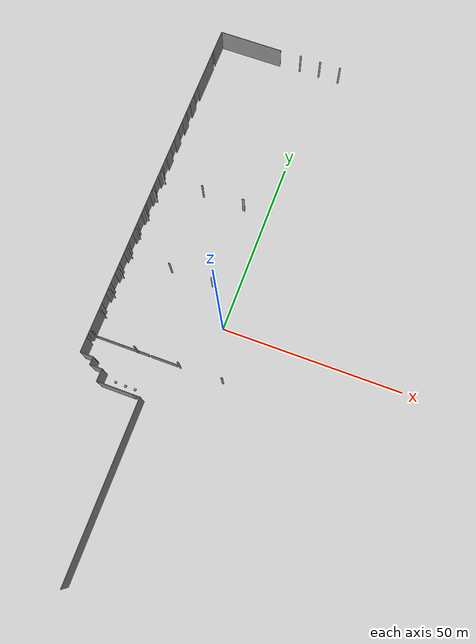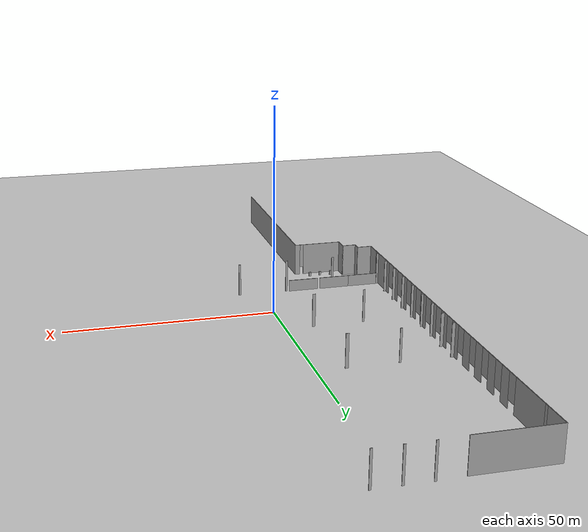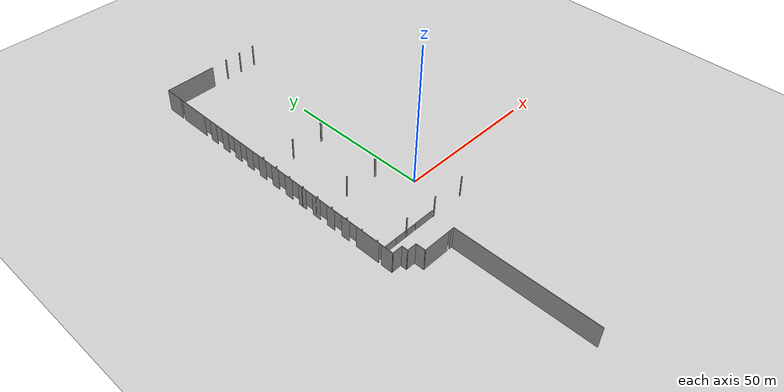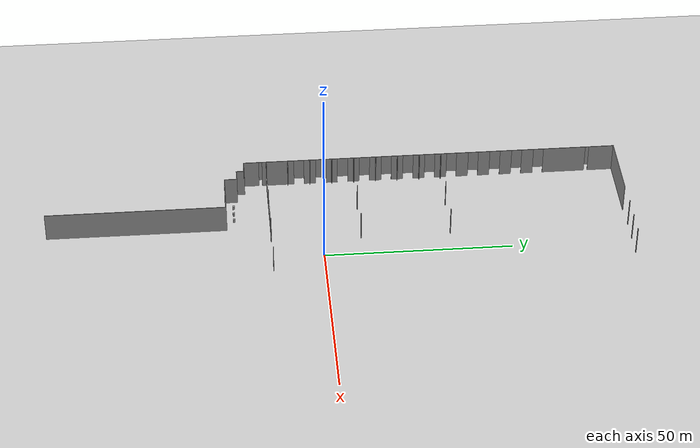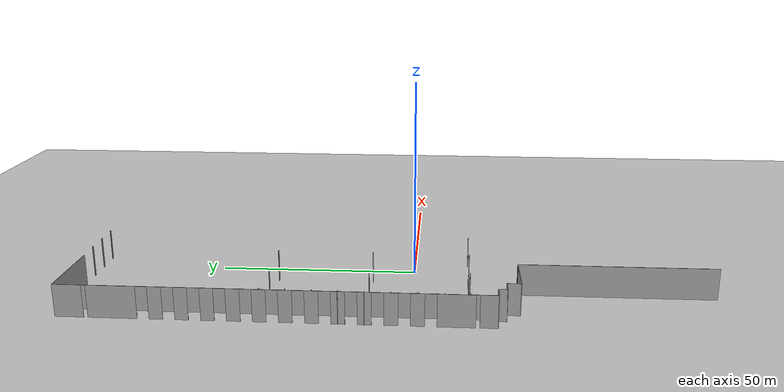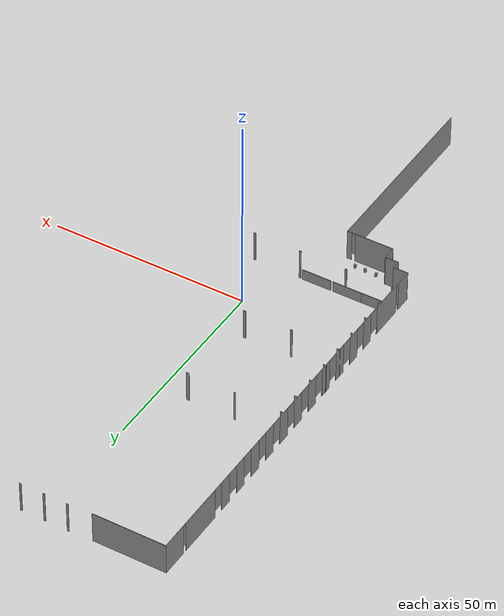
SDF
<sdf version="1.7">
 <world name="default">
  <model name="ground_plane">
   <static>1</static>
   <link name="link">
    <collision name="collision">
     <geometry><plane><normal>0 0 1</normal><size>100 100</size></plane></geometry>
     <surface><friction><ode><mu>100</mu><mu2>50</mu2></ode></friction></surface>
    </collision>
    <visual name="visual">
     <cast_shadows>0</cast_shadows>
     <geometry><plane><normal>0 0 1</normal><size>100 100</size></plane></geometry>
     <material>
      <script><uri>file://media/materials/scripts/gazebo.material</uri><name>Gazebo/Grey</name></script>
     </material>
    </visual>
   </link>
  </model>
  <model name="grey_wall">
   <static>1</static>
   <link name="link">
    <pose>0 0 1.4 0 -0 0</pose>
    <collision name="collision"><geometry><box><size>7.5 0.2 2.8</size></box></geometry></collision>
    <visual name="visual">
     <cast_shadows>0</cast_shadows>
     <geometry><box><size>7.5 0.2 2.8</size></box></geometry>
     <material>
      <script>
       <uri>model://grey_wall/materials/scripts</uri>
       <uri>model://grey_wall/materials/textures</uri>
       <name>vrc/grey_wall</name>
      </script>
     </material>
    </visual>
   </link>
   <pose>-26.8747 -13.6726 0 0 -0 0</pose>
  </model>
  <model name="AM_Wall">
   <pose>59.0153 4.3742 0 0 -0 0</pose>
   <link name="Wall_10">
    <collision name="Wall_10_Collision">
     <geometry><box><size>3.517 0.15 8</size></box></geometry>
     <pose>0 0 4 0 -0 0</pose>
    </collision>
    <visual name="Wall_10_Visual">
     <pose>0 0 4 0 -0 0</pose>
     <geometry><box><size>3.517 0.15 8</size></box></geometry>
     <material>
      <script><uri>file://media/materials/scripts/gazebo.material</uri><name>Gazebo/Grey</name></script>
      <ambient>1 1 1 1</ambient>
     </material>
     <meta><layer>0</layer></meta>
    </visual>
    <pose>-83.398 -28.0385 0 0 -0 1.5708</pose>
   </link>
   <link name="Wall_100">
    <collision name="Wall_100_Collision">
     <geometry><box><size>0.5 0.15 8</size></box></geometry>
     <pose>0 0 4 0 -0 0</pose>
    </collision>
    <visual name="Wall_100_Visual">
     <pose>0 0 4 0 -0 0</pose>
     <geometry><box><size>0.5 0.15 8</size></box></geometry>
     <material>
      <script><uri>file://media/materials/scripts/gazebo.material</uri><name>Gazebo/Grey</name></script>
      <ambient>1 1 1 1</ambient>
     </material>
     <meta><layer>0</layer></meta>
    </visual>
    <pose>-65.913 -18.132 0 0 -0 0</pose>
   </link>
   <link name="Wall_102">
    <collision name="Wall_102_Collision">
     <geometry><box><size>0.5 0.15 8</size></box></geometry>
     <pose>0 0 4 0 -0 0</pose>
    </collision>
    <visual name="Wall_102_Visual">
     <pose>0 0 4 0 -0 0</pose>
     <geometry><box><size>0.5 0.15 8</size></box></geometry>
     <material>
      <script><uri>file://media/materials/scripts/gazebo.material</uri><name>Gazebo/Grey</name></script>
      <ambient>1 1 1 1</ambient>
     </material>
     <meta><layer>0</layer></meta>
    </visual>
    <pose>-53.906 -18.109 0 0 -0 0</pose>
   </link>
   <link name="Wall_11">
    <collision name="Wall_11_Collision">
     <geometry><box><size>3.5 0.15 8</size></box></geometry>
     <pose>0 0 4 0 -0 0</pose>
    </collision>
    <visual name="Wall_11_Visual">
     <pose>0 0 4 0 -0 0</pose>
     <geometry><box><size>3.5 0.15 8</size></box></geometry>
     <material>
      <script><uri>file://media/materials/scripts/gazebo.material</uri><name>Gazebo/Grey</name></script>
      <ambient>1 1 1 1</ambient>
     </material>
     <meta><layer>0</layer></meta>
    </visual>
    <pose>-85.073 -26.355 0 0 -0 3.14159</pose>
   </link>
   <link name="Wall_12">
    <collision name="Wall_12_Collision">
     <geometry><box><size>2.25 0.15 8</size></box></geometry>
     <pose>0 0 4 0 -0 0</pose>
    </collision>
    <visual name="Wall_12_Visual">
     <pose>0 0 4 0 -0 0</pose>
     <geometry><box><size>2.25 0.15 8</size></box></geometry>
     <material>
      <script><uri>file://media/materials/scripts/gazebo.material</uri><name>Gazebo/Grey</name></script>
      <ambient>1 1 1 1</ambient>
     </material>
     <meta><layer>0</layer></meta>
    </visual>
    <pose>-86.748 -25.305 0 0 -0 1.5708</pose>
   </link>
   <link name="Wall_126">
    <collision name="Wall_126_Collision">
     <geometry><box><size>0.5 0.15 8</size></box></geometry>
     <pose>0 0 4 0 -0 0</pose>
    </collision>
    <visual name="Wall_126_Visual">
     <pose>0 0 4 0 -0 0</pose>
     <geometry><box><size>0.5 0.15 8</size></box></geometry>
     <material>
      <script><uri>file://media/materials/scripts/gazebo.material</uri><name>Gazebo/Grey</name></script>
      <ambient>1 1 1 1</ambient>
     </material>
     <meta><layer>0</layer></meta>
    </visual>
    <pose>-77.954 5.86801 0 0 -0 0</pose>
   </link>
   <link name="Wall_128">
    <collision name="Wall_128_Collision">
     <geometry><box><size>0.75 0.15 8</size></box></geometry>
     <pose>0 0 4 0 -0 0</pose>
    </collision>
    <visual name="Wall_128_Visual">
     <pose>0 0 4 0 -0 0</pose>
     <geometry><box><size>0.75 0.15 8</size></box></geometry>
     <material>
      <script><uri>file://media/materials/scripts/gazebo.material</uri><name>Gazebo/Grey</name></script>
      <ambient>1 1 1 1</ambient>
     </material>
     <meta><layer>0</layer></meta>
    </visual>
    <pose>-65.814 5.88501 0 0 -0 0</pose>
   </link>
   <link name="Wall_16">
    <collision name="Wall_16_Collision">
     <geometry><box><size>3.75 0.15 8</size></box></geometry>
     <pose>0 0 4 0 -0 0</pose>
    </collision>
    <visual name="Wall_16_Visual">
     <pose>0 0 4 0 -0 0</pose>
     <geometry><box><size>3.75 0.15 8</size></box></geometry>
     <material>
      <script><uri>file://media/materials/scripts/gazebo.material</uri><name>Gazebo/Grey</name></script>
      <ambient>1 1 1 1</ambient>
     </material>
     <meta><layer>0</layer></meta>
    </visual>
    <pose>-88.548 -24.255 0 0 -0 3.14159</pose>
   </link>
   <link name="Wall_17">
    <pose>-90.348 26.67 0 0 -0 1.5708</pose>
    <visual name="Wall_17_Visual_0">
     <pose>-48.8954 0 4 0 -0 0</pose>
     <geometry><box><size>4.20921 0.15 8</size></box></geometry>
     <material>
      <script><uri>file://media/materials/scripts/gazebo.material</uri><name>Gazebo/Grey</name></script>
      <ambient>1 1 1 1</ambient>
     </material>
     <meta><layer>0</layer></meta>
    </visual>
    <collision name="Wall_17_Collision_0">
     <geometry><box><size>4.20921 0.15 8</size></box></geometry>
     <pose>-48.8954 0 4 0 -0 0</pose>
    </collision>
    <visual name="Wall_17_Visual_1">
     <pose>-41.5368 0 4 0 -0 0</pose>
     <geometry><box><size>8.70797 0.15 8</size></box></geometry>
     <material>
      <script><uri>file://media/materials/scripts/gazebo.material</uri><name>Gazebo/Grey</name></script>
      <ambient>1 1 1 1</ambient>
     </material>
     <meta><layer>0</layer></meta>
    </visual>
    <collision name="Wall_17_Collision_1">
     <geometry><box><size>8.70797 0.15 8</size></box></geometry>
     <pose>-41.5368 0 4 0 -0 0</pose>
    </collision>
    <visual name="Wall_17_Visual_2">
     <pose>-32.823 0 4 0 -0 0</pose>
     <geometry><box><size>3.2326 0.15 8</size></box></geometry>
     <material>
      <script><uri>file://media/materials/scripts/gazebo.material</uri><name>Gazebo/Grey</name></script>
      <ambient>1 1 1 1</ambient>
     </material>
     <meta><layer>0</layer></meta>
    </visual>
    <collision name="Wall_17_Collision_2">
     <geometry><box><size>3.2326 0.15 8</size></box></geometry>
     <pose>-32.823 0 4 0 -0 0</pose>
    </collision>
    <visual name="Wall_17_Visual_3">
     <pose>-26.8406 0 4 0 -0 0</pose>
     <geometry><box><size>3.24213 0.15 8</size></box></geometry>
     <material>
      <script><uri>file://media/materials/scripts/gazebo.material</uri><name>Gazebo/Grey</name></script>
      <ambient>1 1 1 1</ambient>
     </material>
     <meta><layer>0</layer></meta>
    </visual>
    <collision name="Wall_17_Collision_3">
     <geometry><box><size>3.24213 0.15 8</size></box></geometry>
     <pose>-26.8406 0 4 0 -0 0</pose>
    </collision>
    <visual name="Wall_17_Visual_4">
     <pose>-20.8082 0 4 0 -0 0</pose>
     <geometry><box><size>3.2182 0.15 8</size></box></geometry>
     <material>
      <script><uri>file://media/materials/scripts/gazebo.material</uri><name>Gazebo/Grey</name></script>
      <ambient>1 1 1 1</ambient>
     </material>
     <meta><layer>0</layer></meta>
    </visual>
    <collision name="Wall_17_Collision_4">
     <geometry><box><size>3.2182 0.15 8</size></box></geometry>
     <pose>-20.8082 0 4 0 -0 0</pose>
    </collision>
    <visual name="Wall_17_Visual_5">
     <pose>-14.7991 0 4 0 -0 0</pose>
     <geometry><box><size>3.21936 0.15 8</size></box></geometry>
     <material>
      <script><uri>file://media/materials/scripts/gazebo.material</uri><name>Gazebo/Grey</name></script>
      <ambient>1 1 1 1</ambient>
     </material>
     <meta><layer>0</layer></meta>
    </visual>
    <collision name="Wall_17_Collision_5">
     <geometry><box><size>3.21936 0.15 8</size></box></geometry>
     <pose>-14.7991 0 4 0 -0 0</pose>
    </collision>
    <visual name="Wall_17_Visual_6">
     <pose>-8.81504 0 4 0 -0 0</pose>
     <geometry><box><size>3.1983 0.15 8</size></box></geometry>
     <material>
      <script><uri>file://media/materials/scripts/gazebo.material</uri><name>Gazebo/Grey</name></script>
      <ambient>1 1 1 1</ambient>
     </material>
     <meta><layer>0</layer></meta>
    </visual>
    <collision name="Wall_17_Collision_6">
     <geometry><box><size>3.1983 0.15 8</size></box></geometry>
     <pose>-8.81504 0 4 0 -0 0</pose>
    </collision>
    <visual name="Wall_17_Visual_7">
     <pose>-2.81126 0 4 0 -0 0</pose>
     <geometry><box><size>3.1983 0.15 8</size></box></geometry>
     <material>
      <script><uri>file://media/materials/scripts/gazebo.material</uri><name>Gazebo/Grey</name></script>
      <ambient>1 1 1 1</ambient>
     </material>
     <meta><layer>0</layer></meta>
    </visual>
    <collision name="Wall_17_Collision_7">
     <geometry><box><size>3.1983 0.15 8</size></box></geometry>
     <pose>-2.81126 0 4 0 -0 0</pose>
    </collision>
    <visual name="Wall_17_Visual_8">
     <pose>3.19252 0 4 0 -0 0</pose>
     <geometry><box><size>3.22854 0.15 8</size></box></geometry>
     <material>
      <script><uri>file://media/materials/scripts/gazebo.material</uri><name>Gazebo/Grey</name></script>
      <ambient>1 1 1 1</ambient>
     </material>
     <meta><layer>0</layer></meta>
    </visual>
    <collision name="Wall_17_Collision_8">
     <geometry><box><size>3.22854 0.15 8</size></box></geometry>
     <pose>3.19252 0 4 0 -0 0</pose>
    </collision>
    <visual name="Wall_17_Visual_9">
     <pose>9.17362 0 4 0 -0 0</pose>
     <geometry><box><size>3.24367 0.15 8</size></box></geometry>
     <material>
      <script><uri>file://media/materials/scripts/gazebo.material</uri><name>Gazebo/Grey</name></script>
      <ambient>1 1 1 1</ambient>
     </material>
     <meta><layer>0</layer></meta>
    </visual>
    <collision name="Wall_17_Collision_9">
     <geometry><box><size>3.24367 0.15 8</size></box></geometry>
     <pose>9.17362 0 4 0 -0 0</pose>
    </collision>
    <visual name="Wall_17_Visual_10">
     <pose>15.1472 0 4 0 -0 0</pose>
     <geometry><box><size>3.18317 0.15 8</size></box></geometry>
     <material>
      <script><uri>file://media/materials/scripts/gazebo.material</uri><name>Gazebo/Grey</name></script>
      <ambient>1 1 1 1</ambient>
     </material>
     <meta><layer>0</layer></meta>
    </visual>
    <collision name="Wall_17_Collision_10">
     <geometry><box><size>3.18317 0.15 8</size></box></geometry>
     <pose>15.1472 0 4 0 -0 0</pose>
    </collision>
    <visual name="Wall_17_Visual_11">
     <pose>21.1812 0 4 0 -0 0</pose>
     <geometry><box><size>3.18318 0.15 8</size></box></geometry>
     <material>
      <script><uri>file://media/materials/scripts/gazebo.material</uri><name>Gazebo/Grey</name></script>
      <ambient>1 1 1 1</ambient>
     </material>
     <meta><layer>0</layer></meta>
    </visual>
    <collision name="Wall_17_Collision_11">
     <geometry><box><size>3.18318 0.15 8</size></box></geometry>
     <pose>21.1812 0 4 0 -0 0</pose>
    </collision>
    <visual name="Wall_17_Visual_12">
     <pose>27.1812 0 4 0 -0 0</pose>
     <geometry><box><size>3.2361 0.15 8</size></box></geometry>
     <material>
      <script><uri>file://media/materials/scripts/gazebo.material</uri><name>Gazebo/Grey</name></script>
      <ambient>1 1 1 1</ambient>
     </material>
     <meta><layer>0</layer></meta>
    </visual>
    <collision name="Wall_17_Collision_12">
     <geometry><box><size>3.2361 0.15 8</size></box></geometry>
     <pose>27.1812 0 4 0 -0 0</pose>
    </collision>
    <visual name="Wall_17_Visual_13">
     <pose>37.366 0 4 0 -0 0</pose>
     <geometry><box><size>11.6134 0.15 8</size></box></geometry>
     <material>
      <script><uri>file://media/materials/scripts/gazebo.material</uri><name>Gazebo/Grey</name></script>
      <ambient>1 1 1 1</ambient>
     </material>
     <meta><layer>0</layer></meta>
    </visual>
    <collision name="Wall_17_Collision_13">
     <geometry><box><size>11.6134 0.15 8</size></box></geometry>
     <pose>37.366 0 4 0 -0 0</pose>
    </collision>
    <visual name="Wall_17_Visual_14">
     <pose>47.5666 0 4 0 -0 0</pose>
     <geometry><box><size>6.86677 0.15 8</size></box></geometry>
     <material>
      <script><uri>file://media/materials/scripts/gazebo.material</uri><name>Gazebo/Grey</name></script>
      <ambient>1 1 1 1</ambient>
     </material>
     <meta><layer>0</layer></meta>
    </visual>
    <collision name="Wall_17_Collision_14">
     <geometry><box><size>6.86677 0.15 8</size></box></geometry>
     <pose>47.5666 0 4 0 -0 0</pose>
    </collision>
    <visual name="Wall_17_Visual_15">
     <pose>-46.3408 0 5 0 -0 0</pose>
     <geometry><box><size>0.9 0.15 6</size></box></geometry>
     <material>
      <script><uri>file://media/materials/scripts/gazebo.material</uri><name>Gazebo/Grey</name></script>
      <ambient>1 1 1 1</ambient>
     </material>
     <meta><layer>0</layer></meta>
    </visual>
    <collision name="Wall_17_Collision_15">
     <geometry><box><size>0.9 0.15 6</size></box></geometry>
     <pose>-46.3408 0 5 0 -0 0</pose>
    </collision>
    <visual name="Wall_17_Visual_16">
     <pose>-35.8111 0 5 0 -0 0</pose>
     <geometry><box><size>2.74352 0.15 6</size></box></geometry>
     <material>
      <script><uri>file://media/materials/scripts/gazebo.material</uri><name>Gazebo/Grey</name></script>
      <ambient>1 1 1 1</ambient>
     </material>
     <meta><layer>0</layer></meta>
    </visual>
    <collision name="Wall_17_Collision_16">
     <geometry><box><size>2.74352 0.15 6</size></box></geometry>
     <pose>-35.8111 0 5 0 -0 0</pose>
    </collision>
    <visual name="Wall_17_Visual_17">
     <pose>-29.8342 0 5 0 -0 0</pose>
     <geometry><box><size>2.74499 0.15 6</size></box></geometry>
     <material>
      <script><uri>file://media/materials/scripts/gazebo.material</uri><name>Gazebo/Grey</name></script>
      <ambient>1 1 1 1</ambient>
     </material>
     <meta><layer>0</layer></meta>
    </visual>
    <collision name="Wall_17_Collision_17">
     <geometry><box><size>2.74499 0.15 6</size></box></geometry>
     <pose>-29.8342 0 5 0 -0 0</pose>
    </collision>
    <visual name="Wall_17_Visual_18">
     <pose>-23.8185 0 5 0 -0 0</pose>
     <geometry><box><size>2.80224 0.15 6</size></box></geometry>
     <material>
      <script><uri>file://media/materials/scripts/gazebo.material</uri><name>Gazebo/Grey</name></script>
      <ambient>1 1 1 1</ambient>
     </material>
     <meta><layer>0</layer></meta>
    </visual>
    <collision name="Wall_17_Collision_18">
     <geometry><box><size>2.80224 0.15 6</size></box></geometry>
     <pose>-23.8185 0 5 0 -0 0</pose>
    </collision>
    <visual name="Wall_17_Visual_19">
     <pose>-17.804 0 5 0 -0 0</pose>
     <geometry><box><size>2.79036 0.15 6</size></box></geometry>
     <material>
      <script><uri>file://media/materials/scripts/gazebo.material</uri><name>Gazebo/Grey</name></script>
      <ambient>1 1 1 1</ambient>
     </material>
     <meta><layer>0</layer></meta>
    </visual>
    <collision name="Wall_17_Collision_19">
     <geometry><box><size>2.79036 0.15 6</size></box></geometry>
     <pose>-17.804 0 5 0 -0 0</pose>
    </collision>
    <visual name="Wall_17_Visual_20">
     <pose>-11.8018 0 5 0 -0 0</pose>
     <geometry><box><size>2.77524 0.15 6</size></box></geometry>
     <material>
      <script><uri>file://media/materials/scripts/gazebo.material</uri><name>Gazebo/Grey</name></script>
      <ambient>1 1 1 1</ambient>
     </material>
     <meta><layer>0</layer></meta>
    </visual>
    <collision name="Wall_17_Collision_20">
     <geometry><box><size>2.77524 0.15 6</size></box></geometry>
     <pose>-11.8018 0 5 0 -0 0</pose>
    </collision>
    <visual name="Wall_17_Visual_21">
     <pose>-5.81315 0 5 0 -0 0</pose>
     <geometry><box><size>2.80548 0.15 6</size></box></geometry>
     <material>
      <script><uri>file://media/materials/scripts/gazebo.material</uri><name>Gazebo/Grey</name></script>
      <ambient>1 1 1 1</ambient>
     </material>
     <meta><layer>0</layer></meta>
    </visual>
    <collision name="Wall_17_Collision_21">
     <geometry><box><size>2.80548 0.15 6</size></box></geometry>
     <pose>-5.81315 0 5 0 -0 0</pose>
    </collision>
    <visual name="Wall_17_Visual_22">
     <pose>0.183069 0 5 0 -0 0</pose>
     <geometry><box><size>2.79036 0.15 6</size></box></geometry>
     <material>
      <script><uri>file://media/materials/scripts/gazebo.material</uri><name>Gazebo/Grey</name></script>
      <ambient>1 1 1 1</ambient>
     </material>
     <meta><layer>0</layer></meta>
    </visual>
    <collision name="Wall_17_Collision_22">
     <geometry><box><size>2.79036 0.15 6</size></box></geometry>
     <pose>0.183069 0 5 0 -0 0</pose>
    </collision>
    <visual name="Wall_17_Visual_23">
     <pose>6.17929 0 5 0 -0 0</pose>
     <geometry><box><size>2.74499 0.15 6</size></box></geometry>
     <material>
      <script><uri>file://media/materials/scripts/gazebo.material</uri><name>Gazebo/Grey</name></script>
      <ambient>1 1 1 1</ambient>
     </material>
     <meta><layer>0</layer></meta>
    </visual>
    <collision name="Wall_17_Collision_23">
     <geometry><box><size>2.74499 0.15 6</size></box></geometry>
     <pose>6.17929 0 5 0 -0 0</pose>
    </collision>
    <visual name="Wall_17_Visual_24">
     <pose>12.1755 0 5 0 -0 0</pose>
     <geometry><box><size>2.76011 0.15 6</size></box></geometry>
     <material>
      <script><uri>file://media/materials/scripts/gazebo.material</uri><name>Gazebo/Grey</name></script>
      <ambient>1 1 1 1</ambient>
     </material>
     <meta><layer>0</layer></meta>
    </visual>
    <collision name="Wall_17_Collision_24">
     <geometry><box><size>2.76011 0.15 6</size></box></geometry>
     <pose>12.1755 0 5 0 -0 0</pose>
    </collision>
    <visual name="Wall_17_Visual_25">
     <pose>18.1642 0 5 0 -0 0</pose>
     <geometry><box><size>2.85085 0.15 6</size></box></geometry>
     <material>
      <script><uri>file://media/materials/scripts/gazebo.material</uri><name>Gazebo/Grey</name></script>
      <ambient>1 1 1 1</ambient>
     </material>
     <meta><layer>0</layer></meta>
    </visual>
    <collision name="Wall_17_Collision_25">
     <geometry><box><size>2.85085 0.15 6</size></box></geometry>
     <pose>18.1642 0 5 0 -0 0</pose>
    </collision>
    <visual name="Wall_17_Visual_26">
     <pose>24.1679 0 5 0 -0 0</pose>
     <geometry><box><size>2.79036 0.15 6</size></box></geometry>
     <material>
      <script><uri>file://media/materials/scripts/gazebo.material</uri><name>Gazebo/Grey</name></script>
      <ambient>1 1 1 1</ambient>
     </material>
     <meta><layer>0</layer></meta>
    </visual>
    <collision name="Wall_17_Collision_26">
     <geometry><box><size>2.79036 0.15 6</size></box></geometry>
     <pose>24.1679 0 5 0 -0 0</pose>
    </collision>
    <visual name="Wall_17_Visual_27">
     <pose>30.1793 0 5 0 -0 0</pose>
     <geometry><box><size>2.76011 0.15 6</size></box></geometry>
     <material>
      <script><uri>file://media/materials/scripts/gazebo.material</uri><name>Gazebo/Grey</name></script>
      <ambient>1 1 1 1</ambient>
     </material>
     <meta><layer>0</layer></meta>
    </visual>
    <collision name="Wall_17_Collision_27">
     <geometry><box><size>2.76011 0.15 6</size></box></geometry>
     <pose>30.1793 0 5 0 -0 0</pose>
    </collision>
    <visual name="Wall_17_Visual_28">
     <pose>43.653 0 5 0 -0 0</pose>
     <geometry><box><size>0.960491 0.15 6</size></box></geometry>
     <material>
      <script><uri>file://media/materials/scripts/gazebo.material</uri><name>Gazebo/Grey</name></script>
      <ambient>1 1 1 1</ambient>
     </material>
     <meta><layer>0</layer></meta>
    </visual>
    <collision name="Wall_17_Collision_28">
     <geometry><box><size>0.960491 0.15 6</size></box></geometry>
     <pose>43.653 0 5 0 -0 0</pose>
    </collision>
   </link>
   <link name="Wall_178">
    <collision name="Wall_178_Collision">
     <geometry><box><size>0.75 0.15 8</size></box></geometry>
     <pose>0 0 4 0 -0 0</pose>
    </collision>
    <visual name="Wall_178_Visual">
     <pose>0 0 4 0 -0 0</pose>
     <geometry><box><size>0.75 0.15 8</size></box></geometry>
     <material>
      <script><uri>file://media/materials/scripts/gazebo.material</uri><name>Gazebo/Grey</name></script>
      <ambient>1 1 1 1</ambient>
     </material>
     <meta><layer>0</layer></meta>
    </visual>
    <pose>-65.876 29.853 0 0 -0 0</pose>
   </link>
   <link name="Wall_180">
    <collision name="Wall_180_Collision">
     <geometry><box><size>0.5 0.15 8</size></box></geometry>
     <pose>0 0 4 0 -0 0</pose>
    </collision>
    <visual name="Wall_180_Visual">
     <pose>0 0 4 0 -0 0</pose>
     <geometry><box><size>0.5 0.15 8</size></box></geometry>
     <material>
      <script><uri>file://media/materials/scripts/gazebo.material</uri><name>Gazebo/Grey</name></script>
      <ambient>1 1 1 1</ambient>
     </material>
     <meta><layer>0</layer></meta>
    </visual>
    <pose>-77.914 29.866 0 0 -0 0</pose>
   </link>
   <link name="Wall_182">
    <collision name="Wall_182_Collision">
     <geometry><box><size>0.75 0.15 8</size></box></geometry>
     <pose>0 0 4 0 -0 0</pose>
    </collision>
    <visual name="Wall_182_Visual">
     <pose>0 0 4 0 -0 0</pose>
     <geometry><box><size>0.75 0.15 8</size></box></geometry>
     <material>
      <script><uri>file://media/materials/scripts/gazebo.material</uri><name>Gazebo/Grey</name></script>
      <ambient>1 1 1 1</ambient>
     </material>
     <meta><layer>0</layer></meta>
    </visual>
    <pose>-89.894 29.846 0 0 -0 3.14159</pose>
   </link>
   <link name="Wall_184">
    <collision name="Wall_184_Collision">
     <geometry><box><size>0.75 0.15 8</size></box></geometry>
     <pose>0 0 4 0 -0 0</pose>
    </collision>
    <visual name="Wall_184_Visual">
     <pose>0 0 4 0 -0 0</pose>
     <geometry><box><size>0.75 0.15 8</size></box></geometry>
     <material>
      <script><uri>file://media/materials/scripts/gazebo.material</uri><name>Gazebo/Grey</name></script>
      <ambient>1 1 1 1</ambient>
     </material>
     <meta><layer>0</layer></meta>
    </visual>
    <pose>-89.874 23.912 0 0 -0 3.14159</pose>
   </link>
   <link name="Wall_186">
    <collision name="Wall_186_Collision">
     <geometry><box><size>0.75 0.15 8</size></box></geometry>
     <pose>0 0 4 0 -0 0</pose>
    </collision>
    <visual name="Wall_186_Visual">
     <pose>0 0 4 0 -0 0</pose>
     <geometry><box><size>0.75 0.15 8</size></box></geometry>
     <material>
      <script><uri>file://media/materials/scripts/gazebo.material</uri><name>Gazebo/Grey</name></script>
      <ambient>1 1 1 1</ambient>
     </material>
     <meta><layer>0</layer></meta>
    </visual>
    <pose>-90.038 17.878 0 0 -0 0</pose>
   </link>
   <link name="Wall_188">
    <collision name="Wall_188_Collision">
     <geometry><box><size>0.75 0.15 8</size></box></geometry>
     <pose>0 0 4 0 -0 0</pose>
    </collision>
    <visual name="Wall_188_Visual">
     <pose>0 0 4 0 -0 0</pose>
     <geometry><box><size>0.75 0.15 8</size></box></geometry>
     <material>
      <script><uri>file://media/materials/scripts/gazebo.material</uri><name>Gazebo/Grey</name></script>
      <ambient>1 1 1 1</ambient>
     </material>
     <meta><layer>0</layer></meta>
    </visual>
    <pose>-90.118 11.924 0 0 -0 0</pose>
   </link>
   <link name="Wall_190">
    <collision name="Wall_190_Collision">
     <geometry><box><size>0.75 0.15 8</size></box></geometry>
     <pose>0 0 4 0 -0 0</pose>
    </collision>
    <visual name="Wall_190_Visual">
     <pose>0 0 4 0 -0 0</pose>
     <geometry><box><size>0.75 0.15 8</size></box></geometry>
     <material>
      <script><uri>file://media/materials/scripts/gazebo.material</uri><name>Gazebo/Grey</name></script>
      <ambient>1 1 1 1</ambient>
     </material>
     <meta><layer>0</layer></meta>
    </visual>
    <pose>-90.058 5.91001 0 0 -0 0</pose>
   </link>
   <link name="Wall_192">
    <collision name="Wall_192_Collision">
     <geometry><box><size>0.75 0.15 8</size></box></geometry>
     <pose>0 0 4 0 -0 0</pose>
    </collision>
    <visual name="Wall_192_Visual">
     <pose>0 0 4 0 -0 0</pose>
     <geometry><box><size>0.75 0.15 8</size></box></geometry>
     <material>
      <script><uri>file://media/materials/scripts/gazebo.material</uri><name>Gazebo/Grey</name></script>
      <ambient>1 1 1 1</ambient>
     </material>
     <meta><layer>0</layer></meta>
    </visual>
    <pose>-90.018 -0.143993 0 0 -0 0</pose>
   </link>
   <link name="Wall_194">
    <collision name="Wall_194_Collision">
     <geometry><box><size>0.75 0.15 8</size></box></geometry>
     <pose>0 0 4 0 -0 0</pose>
    </collision>
    <visual name="Wall_194_Visual">
     <pose>0 0 4 0 -0 0</pose>
     <geometry><box><size>0.75 0.15 8</size></box></geometry>
     <material>
      <script><uri>file://media/materials/scripts/gazebo.material</uri><name>Gazebo/Grey</name></script>
      <ambient>1 1 1 1</ambient>
     </material>
     <meta><layer>0</layer></meta>
    </visual>
    <pose>-89.998 -6.13799 0 0 -0 0</pose>
   </link>
   <link name="Wall_196">
    <collision name="Wall_196_Collision">
     <geometry><box><size>0.75 0.15 8</size></box></geometry>
     <pose>0 0 4 0 -0 0</pose>
    </collision>
    <visual name="Wall_196_Visual">
     <pose>0 0 4 0 -0 0</pose>
     <geometry><box><size>0.75 0.15 8</size></box></geometry>
     <material>
      <script><uri>file://media/materials/scripts/gazebo.material</uri><name>Gazebo/Grey</name></script>
      <ambient>1 1 1 1</ambient>
     </material>
     <meta><layer>0</layer></meta>
    </visual>
    <pose>-90.038 -12.212 0 0 -0 0</pose>
   </link>
   <link name="Wall_21">
    <collision name="Wall_21_Collision">
     <geometry><box><size>18.5 0.15 8</size></box></geometry>
     <pose>0 0 4 0 -0 0</pose>
    </collision>
    <visual name="Wall_21_Visual">
     <pose>0 0 4 0 -0 0</pose>
     <geometry><box><size>18.5 0.15 8</size></box></geometry>
     <material>
      <script><uri>file://media/materials/scripts/gazebo.material</uri><name>Gazebo/Grey</name></script>
      <ambient>1 1 1 1</ambient>
     </material>
     <meta><layer>0</layer></meta>
    </visual>
    <pose>-81.173 77.595 0 0 -0 0</pose>
   </link>
   <link name="Wall_25">
    <collision name="Wall_25_Collision">
     <geometry><box><size>0.5 0.15 8</size></box></geometry>
     <pose>0 0 4 0 -0 0</pose>
    </collision>
    <visual name="Wall_25_Visual">
     <pose>0 0 4 0 -0 0</pose>
     <geometry><box><size>0.5 0.15 8</size></box></geometry>
     <material>
      <script><uri>file://media/materials/scripts/gazebo.material</uri><name>Gazebo/Grey</name></script>
      <ambient>1 1 1 1</ambient>
     </material>
     <meta><layer>0</layer></meta>
    </visual>
    <pose>-65.882 77.895 0 0 -0 0</pose>
   </link>
   <link name="Wall_27">
    <collision name="Wall_27_Collision">
     <geometry><box><size>0.5 0.15 8</size></box></geometry>
     <pose>0 0 4 0 -0 0</pose>
    </collision>
    <visual name="Wall_27_Visual">
     <pose>0 0 4 0 -0 0</pose>
     <geometry><box><size>0.5 0.15 8</size></box></geometry>
     <material>
      <script><uri>file://media/materials/scripts/gazebo.material</uri><name>Gazebo/Grey</name></script>
      <ambient>1 1 1 1</ambient>
     </material>
     <meta><layer>0</layer></meta>
    </visual>
    <pose>-59.938 77.895 0 0 -0 0</pose>
   </link>
   <link name="Wall_29">
    <collision name="Wall_29_Collision">
     <geometry><box><size>0.5 0.15 8</size></box></geometry>
     <pose>0 0 4 0 -0 0</pose>
    </collision>
    <visual name="Wall_29_Visual">
     <pose>0 0 4 0 -0 0</pose>
     <geometry><box><size>0.5 0.15 8</size></box></geometry>
     <material>
      <script><uri>file://media/materials/scripts/gazebo.material</uri><name>Gazebo/Grey</name></script>
      <ambient>1 1 1 1</ambient>
     </material>
     <meta><layer>0</layer></meta>
    </visual>
    <pose>-53.947 77.907 0 0 -0 0</pose>
   </link>
   <link name="Wall_6">
    <collision name="Wall_6_Collision">
     <geometry><box><size>48.2329 0.15 8</size></box></geometry>
     <pose>0 0 4 0 -0 0</pose>
    </collision>
    <visual name="Wall_6_Visual">
     <pose>0 0 4 0 -0 0</pose>
     <geometry><box><size>48.2329 0.15 8</size></box></geometry>
     <material>
      <script><uri>file://media/materials/scripts/gazebo.material</uri><name>Gazebo/Grey</name></script>
      <ambient>1 1 1 1</ambient>
     </material>
     <meta><layer>0</layer></meta>
    </visual>
    <pose>-71.548 -53.7635 0 0 -0 -1.5708</pose>
   </link>
   <link name="Wall_9">
    <pose>-77.473 -29.722 0 0 -0 3.14159</pose>
    <visual name="Wall_9_Visual_0">
     <pose>-5.372 0 4 0 -0 0</pose>
     <geometry><box><size>1.256 0.15 8</size></box></geometry>
     <material>
      <script><uri>file://media/materials/scripts/gazebo.material</uri><name>Gazebo/Grey</name></script>
      <ambient>1 1 1 1</ambient>
     </material>
     <meta><layer>0</layer></meta>
    </visual>
    <collision name="Wall_9_Collision_0">
     <geometry><box><size>1.256 0.15 8</size></box></geometry>
     <pose>-5.372 0 4 0 -0 0</pose>
    </collision>
    <visual name="Wall_9_Visual_1">
     <pose>1.078 0 4 0 -0 0</pose>
     <geometry><box><size>9.844 0.15 8</size></box></geometry>
     <material>
      <script><uri>file://media/materials/scripts/gazebo.material</uri><name>Gazebo/Grey</name></script>
      <ambient>1 1 1 1</ambient>
     </material>
     <meta><layer>0</layer></meta>
    </visual>
    <collision name="Wall_9_Collision_1">
     <geometry><box><size>9.844 0.15 8</size></box></geometry>
     <pose>1.078 0 4 0 -0 0</pose>
    </collision>
    <visual name="Wall_9_Visual_2">
     <pose>-4.294 0 5 0 -0 0</pose>
     <geometry><box><size>0.9 0.15 6</size></box></geometry>
     <material>
      <script><uri>file://media/materials/scripts/gazebo.material</uri><name>Gazebo/Grey</name></script>
      <ambient>1 1 1 1</ambient>
     </material>
     <meta><layer>0</layer></meta>
    </visual>
    <collision name="Wall_9_Collision_2">
     <geometry><box><size>0.9 0.15 6</size></box></geometry>
     <pose>-4.294 0 5 0 -0 0</pose>
    </collision>
   </link>
   <link name="Wall_93">
    <collision name="Wall_93_Collision">
     <geometry><box><size>0.5 0.15 8</size></box></geometry>
     <pose>0 0 4 0 -0 0</pose>
    </collision>
    <visual name="Wall_93_Visual">
     <pose>0 0 4 0 -0 0</pose>
     <geometry><box><size>0.5 0.15 8</size></box></geometry>
     <material>
      <script><uri>file://media/materials/scripts/gazebo.material</uri><name>Gazebo/Grey</name></script>
      <ambient>1 1 1 1</ambient>
     </material>
     <meta><layer>0</layer></meta>
    </visual>
    <pose>-89.933 -18.068 0 0 -0 0</pose>
   </link>
   <link name="Wall_95">
    <collision name="Wall_95_Collision">
     <geometry><box><size>0.5 0.15 8</size></box></geometry>
     <pose>0 0 4 0 -0 0</pose>
    </collision>
    <visual name="Wall_95_Visual">
     <pose>0 0 4 0 -0 0</pose>
     <geometry><box><size>0.5 0.15 8</size></box></geometry>
     <material>
      <script><uri>file://media/materials/scripts/gazebo.material</uri><name>Gazebo/Grey</name></script>
      <ambient>1 1 1 1</ambient>
     </material>
     <meta><layer>0</layer></meta>
    </visual>
    <pose>-77.91 -18.122 0 0 -0 0</pose>
   </link>
   <static>1</static>
  </model>
  <model name="grey_wall_clone">
   <static>1</static>
   <link name="link">
    <pose>0 0 1.4 0 -0 0</pose>
    <collision name="collision"><geometry><box><size>7.5 0.2 2.8</size></box></geometry></collision>
    <visual name="visual">
     <cast_shadows>0</cast_shadows>
     <geometry><box><size>7.5 0.2 2.8</size></box></geometry>
     <material>
      <script>
       <uri>model://grey_wall/materials/scripts</uri>
       <uri>model://grey_wall/materials/textures</uri>
       <name>vrc/grey_wall</name>
      </script>
     </material>
    </visual>
   </link>
   <pose>-19.3778 -13.6574 0 0 -0 0</pose>
  </model>
  <model name="grey_wall_clone_0">
   <static>1</static>
   <link name="link">
    <pose>0 0 1.4 0 -0 0</pose>
    <collision name="collision"><geometry><box><size>7.5 0.2 2.8</size></box></geometry></collision>
    <visual name="visual">
     <cast_shadows>0</cast_shadows>
     <geometry><box><size>7.5 0.2 2.8</size></box></geometry>
     <material>
      <script>
       <uri>model://grey_wall/materials/scripts</uri>
       <uri>model://grey_wall/materials/textures</uri>
       <name>vrc/grey_wall</name>
      </script>
     </material>
    </visual>
   </link>
   <pose>-11.3401 -13.6587 0 0 -0 0</pose>
  </model>
  <model name="charger">
   <link name="link">
    <inertial>
     <mass>0.252412</mass>
     <inertia>
      <ixx>0.0262063</ixx>
      <ixy>0</ixy>
      <ixz>0</ixz>
      <iyy>0.0264845</iyy>
      <iyz>0</iyz>
      <izz>0.0106221</izz>
     </inertia>
    </inertial>
    <visual name="visual">
     <geometry><box><size>0.509025 0.495865 1</size></box></geometry>
     <material>
      <script><name>Gazebo/Grey</name><uri>file://media/materials/scripts/gazebo.material</uri></script>
      <shader type="pixel"/>
     </material>
    </visual>
    <collision name="collision">
     <geometry><box><size>0.509025 0.495865 1</size></box></geometry>
     <surface>
      <friction>
       <ode><mu>1</mu><mu2>1</mu2><fdir1>0 0 0</fdir1><slip1>0</slip1><slip2>0</slip2></ode>
       <torsional>
        <coefficient>1</coefficient>
        <patch_radius>0</patch_radius>
        <surface_radius>0</surface_radius>
        <use_patch_radius>1</use_patch_radius>
        <ode><slip>0</slip></ode>
       </torsional>
      </friction>
      <bounce><restitution_coefficient>0</restitution_coefficient><threshold>1e+06</threshold></bounce>
      <contact>
       <collide_without_contact>0</collide_without_contact>
       <collide_without_contact_bitmask>1</collide_without_contact_bitmask>
       <collide_bitmask>1</collide_bitmask>
       <ode>
        <soft_cfm>0</soft_cfm>
        <soft_erp>0.2</soft_erp>
        <kp>1e+13</kp>
        <kd>1</kd>
        <max_vel>0.01</max_vel>
        <min_depth>0</min_depth>
       </ode>
       <bullet>
        <split_impulse>1</split_impulse>
        <split_impulse_penetration_threshold>-0.01</split_impulse_penetration_threshold>
        <soft_cfm>0</soft_cfm>
        <soft_erp>0.2</soft_erp>
        <kp>1e+13</kp>
        <kd>1</kd>
       </bullet>
      </contact>
     </surface>
    </collision>
   </link>
   <static>1</static>
   <pose>-15.8791 -23.2328 0.5 0 -0 0</pose>
  </model>
  <model name="charger_clone">
   <link name="link">
    <inertial>
     <mass>0.252412</mass>
     <inertia>
      <ixx>0.0262063</ixx>
      <ixy>0</ixy>
      <ixz>0</ixz>
      <iyy>0.0264845</iyy>
      <iyz>0</iyz>
      <izz>0.0106221</izz>
     </inertia>
    </inertial>
    <visual name="visual">
     <geometry><box><size>0.509025 0.495865 1</size></box></geometry>
     <material>
      <script><name>Gazebo/Grey</name><uri>file://media/materials/scripts/gazebo.material</uri></script>
      <shader type="pixel"/>
     </material>
    </visual>
    <collision name="collision">
     <geometry><box><size>0.509025 0.495865 1</size></box></geometry>
     <surface>
      <friction>
       <ode><mu>1</mu><mu2>1</mu2><fdir1>0 0 0</fdir1><slip1>0</slip1><slip2>0</slip2></ode>
       <torsional>
        <coefficient>1</coefficient>
        <patch_radius>0</patch_radius>
        <surface_radius>0</surface_radius>
        <use_patch_radius>1</use_patch_radius>
        <ode><slip>0</slip></ode>
       </torsional>
      </friction>
      <bounce><restitution_coefficient>0</restitution_coefficient><threshold>1e+06</threshold></bounce>
      <contact>
       <collide_without_contact>0</collide_without_contact>
       <collide_without_contact_bitmask>1</collide_without_contact_bitmask>
       <collide_bitmask>1</collide_bitmask>
       <ode>
        <soft_cfm>0</soft_cfm>
        <soft_erp>0.2</soft_erp>
        <kp>1e+13</kp>
        <kd>1</kd>
        <max_vel>0.01</max_vel>
        <min_depth>0</min_depth>
       </ode>
       <bullet>
        <split_impulse>1</split_impulse>
        <split_impulse_penetration_threshold>-0.01</split_impulse_penetration_threshold>
        <soft_cfm>0</soft_cfm>
        <soft_erp>0.2</soft_erp>
        <kp>1e+13</kp>
        <kd>1</kd>
       </bullet>
      </contact>
     </surface>
    </collision>
   </link>
   <static>1</static>
   <pose>-18.5941 -23.2308 0.5 0 -0 0</pose>
  </model>
  <model name="charger_clone_clone">
   <link name="link">
    <inertial>
     <mass>0.252412</mass>
     <inertia>
      <ixx>0.0262063</ixx>
      <ixy>0</ixy>
      <ixz>0</ixz>
      <iyy>0.0264845</iyy>
      <iyz>0</iyz>
      <izz>0.0106221</izz>
     </inertia>
    </inertial>
    <visual name="visual">
     <geometry><box><size>0.509025 0.495865 1</size></box></geometry>
     <material>
      <script><name>Gazebo/Grey</name><uri>file://media/materials/scripts/gazebo.material</uri></script>
      <shader type="pixel"/>
     </material>
    </visual>
    <collision name="collision">
     <geometry><box><size>0.509025 0.495865 1</size></box></geometry>
     <surface>
      <friction>
       <ode><mu>1</mu><mu2>1</mu2><fdir1>0 0 0</fdir1><slip1>0</slip1><slip2>0</slip2></ode>
       <torsional>
        <coefficient>1</coefficient>
        <patch_radius>0</patch_radius>
        <surface_radius>0</surface_radius>
        <use_patch_radius>1</use_patch_radius>
        <ode><slip>0</slip></ode>
       </torsional>
      </friction>
      <bounce><restitution_coefficient>0</restitution_coefficient><threshold>1e+06</threshold></bounce>
      <contact>
       <collide_without_contact>0</collide_without_contact>
       <collide_without_contact_bitmask>1</collide_without_contact_bitmask>
       <collide_bitmask>1</collide_bitmask>
       <ode>
        <soft_cfm>0</soft_cfm>
        <soft_erp>0.2</soft_erp>
        <kp>1e+13</kp>
        <kd>1</kd>
        <max_vel>0.01</max_vel>
        <min_depth>0</min_depth>
       </ode>
       <bullet>
        <split_impulse>1</split_impulse>
        <split_impulse_penetration_threshold>-0.01</split_impulse_penetration_threshold>
        <soft_cfm>0</soft_cfm>
        <soft_erp>0.2</soft_erp>
        <kp>1e+13</kp>
        <kd>1</kd>
       </bullet>
      </contact>
     </surface>
    </collision>
   </link>
   <static>1</static>
   <pose>-21.4334 -23.1403 0.5 0 -0 0</pose>
  </model>
 </world>
</sdf>
